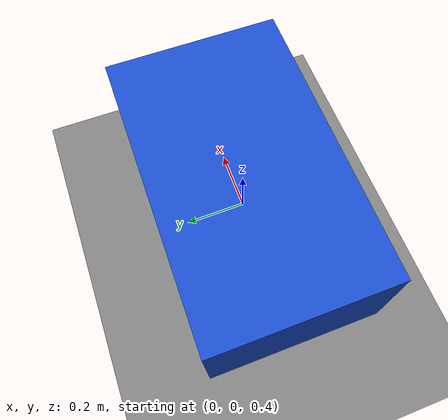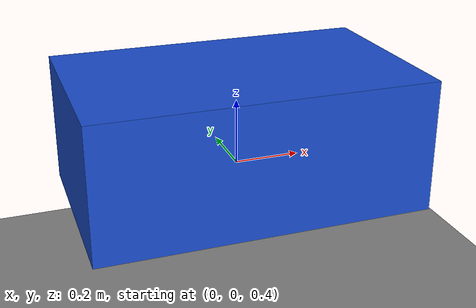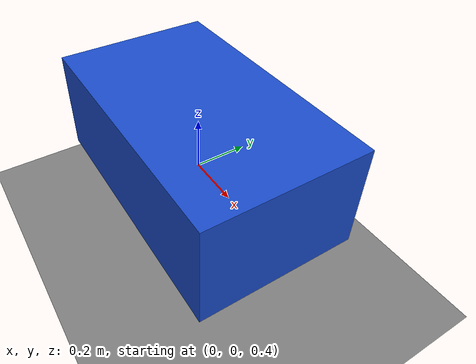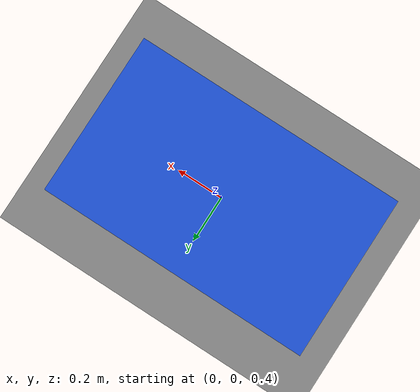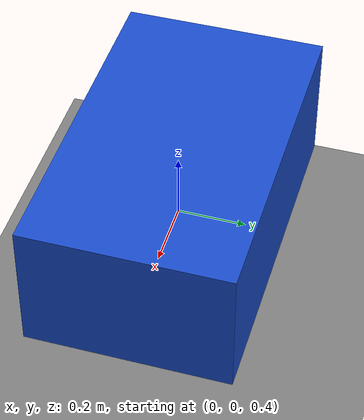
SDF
<?xml version="1.0" ?>

<sdf version="1.8">

  <world name="sensor_world">

    <!-- Physics -->
    <physics name="1ms" type="ignored">
      <max_step_size>0.001</max_step_size>
      <real_time_factor>1.0</real_time_factor>
    </physics>

    <!-- Required Gazebo systems -->
    <plugin
      filename="gz-sim-physics-system"
      name="gz::sim::systems::Physics">
    </plugin>

    <plugin
      filename="gz-sim-user-commands-system"
      name="gz::sim::systems::UserCommands">
    </plugin>

    <plugin
      filename="gz-sim-scene-broadcaster-system"
      name="gz::sim::systems::SceneBroadcaster">
    </plugin>

    <!-- Sensor rendering system -->
    <plugin
      filename="gz-sim-sensors-system"
      name="gz::sim::systems::Sensors">
      <render_engine>ogre2</render_engine>
    </plugin>

    <!-- IMU system -->
    <plugin
      filename="gz-sim-imu-system"
      name="gz::sim::systems::Imu">
    </plugin>

    <!-- Contact system -->
    <plugin
      filename="gz-sim-contact-system"
      name="gz::sim::systems::Contact">
    </plugin>

    <!-- Ground -->
    <model name="ground_plane">

      <static>true</static>

      <link name="link">

        <collision name="collision">
          <geometry>
            <plane>
              <normal>0 0 1</normal>
              <size>100 100</size>
            </plane>
          </geometry>
        </collision>

        <visual name="visual">
          <geometry>
            <plane>
              <normal>0 0 1</normal>
              <size>100 100</size>
            </plane>
          </geometry>

          <material>
            <ambient>0.5 0.5 0.5 1</ambient>
            <diffuse>0.5 0.5 0.5 1</diffuse>
          </material>
        </visual>

      </link>
    </model>

    <!-- Sun -->
    <light
      name="sun"
      type="directional">

      <cast_shadows>true</cast_shadows>

      <pose>0 0 10 0 0 0</pose>

      <diffuse>0.8 0.8 0.8 1</diffuse>
      <specular>0.2 0.2 0.2 1</specular>

      <direction>-0.5 0.1 -0.9</direction>

    </light>

    <!-- Robot -->
    <model name="sensor_robot">

      <pose>0 0 0.5 0 0 0</pose>

      <link name="base_link">

        <!-- Robot body -->
        <inertial>
          <mass>10.0</mass>

          <inertia>
            <ixx>1.0</ixx>
            <iyy>1.0</iyy>
            <izz>1.0</izz>
            <ixy>0.0</ixy>
            <ixz>0.0</ixz>
            <iyz>0.0</iyz>
          </inertia>
        </inertial>

        <!-- Body collision -->
        <collision name="collision">

          <geometry>
            <box>
              <size>1.0 0.6 0.4</size>
            </box>
          </geometry>

        </collision>

        <!-- Body visual -->
        <visual name="visual">

          <geometry>
            <box>
              <size>1.0 0.6 0.4</size>
            </box>
          </geometry>

          <material>
            <ambient>0.1 0.3 0.8 1</ambient>
            <diffuse>0.1 0.3 0.8 1</diffuse>
          </material>

        </visual>

        <!-- IMU -->

        <sensor
          name="imu_sensor"
          type="imu">

          <always_on>true</always_on>

          <update_rate>100</update_rate>

          <visualize>true</visualize>

          <topic>/imu</topic>

        </sensor>

      </link>

    </model>

  </world>

</sdf>
